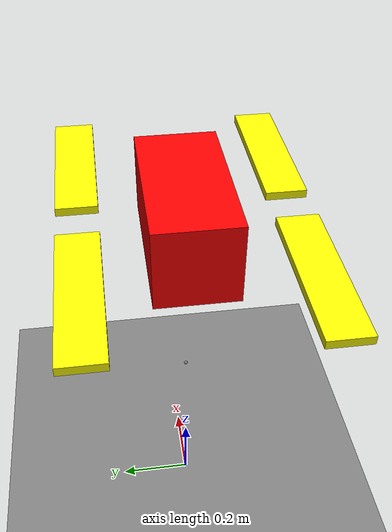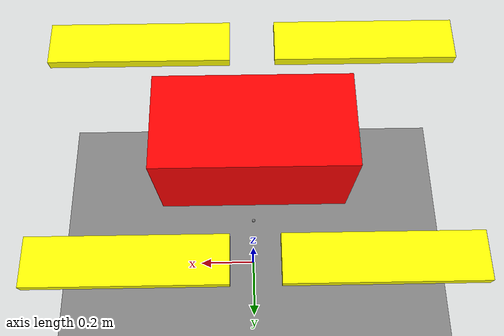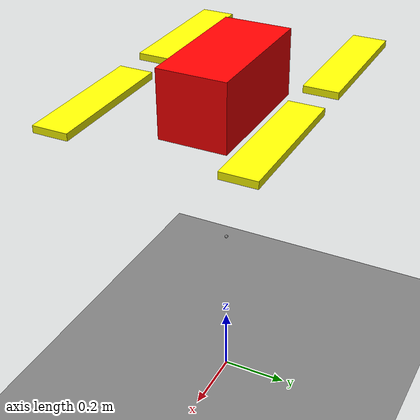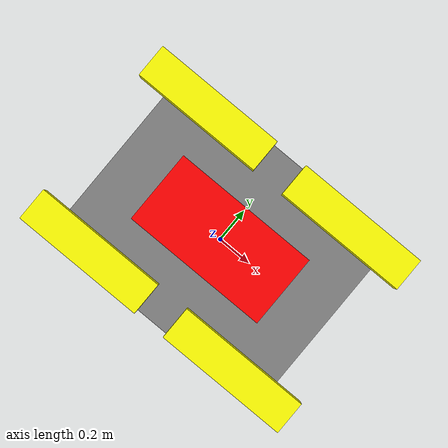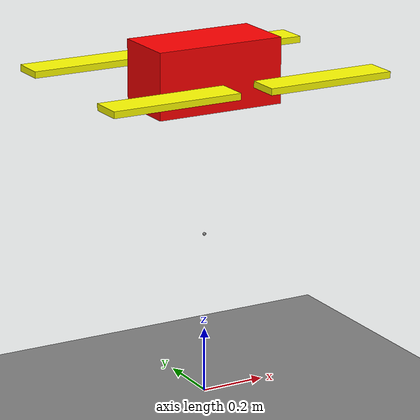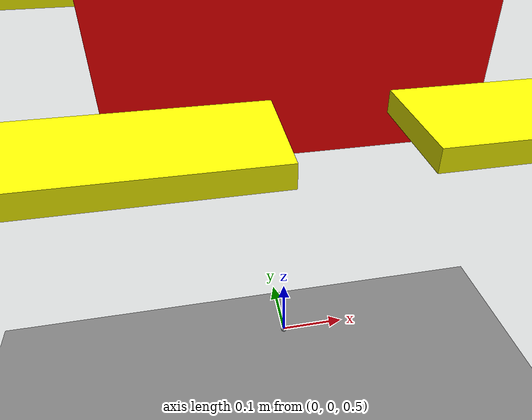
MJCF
<mujoco model="simulation">
    <option gravity="0 0 -9.81" timestep="0.001" integrator="RK4"/>
    <visual>
        <headlight ambient="0.7 0.7 0.7"/>
    </visual>
    <asset>
        <texture name="checker" type="2d" builtin="checker" width="512" height="512" rgb1="0.7 0.7 0.7" rgb2="0.3 0.3 0.3"/>
        <material name="grid" texture="checker" texrepeat="1 1" texuniform="true"/>
    </asset>
    <worldbody>
        <geom type="plane" size="1000 1000 1" material="grid"/>
        <body name="usv" pos="0 0 1">
            <freejoint/>
            <geom type="box" size="0.2 0.1 0.1" mass="1" rgba="1 0 0 1"/>
            <site name="s_imu" pos="0 0 0"/>
            <site name="s_rangefinder" pos="0 0 -0.5" zaxis="0 0 -1"/>
            <body name="m1" pos="0.25 0.25 0">
                <joint name="j1" type="hinge" axis="0 0 1"/>
                <site name="s1" pos="0 0 0"/>
                <geom type="box" size="0.2 0.05 0.01" mass="0.01" rgba="1 1 0 1"/>
            </body>
            <body name="m2" pos="-0.25 0.25 0">
                <joint name="j2" type="hinge" axis="0 0 1"/>
                <site name="s2" pos="0 0 0"/>
                <geom type="box" size="0.2 0.05 0.01" mass="0.01" rgba="1 1 0 1"/>
            </body>
            <body name="m3" pos="-0.25 -0.25 0">
                <joint name="j3" type="hinge" axis="0 0 1"/>
                <site name="s3" pos="0 0 0"/>
                <geom type="box" size="0.2 0.05 0.01" mass="0.01" rgba="1 1 0 1"/>
            </body>
            <body name="m4" pos="0.25 -0.25 0">
                <joint name="j4" type="hinge" axis="0 0 1"/>
                <site name="s4" pos="0 0 0"/>
                <geom type="box" size="0.2 0.05 0.01" mass="0.01" rgba="1 1 0 1"/>
            </body>
        </body>
    </worldbody>
    <actuator>
        <motor name="motor1" joint="j1"/>
        <motor name="motor2" joint="j2"/>
        <motor name="motor3" joint="j3"/>
        <motor name="motor4" joint="j4"/>
        <general name="propeller1" site="s1" gear="0 0 +0.000003133 0 0 -0.00000003133"/>
        <general name="propeller2" site="s2" gear="0 0 -0.000003133 0 0 -0.00000003133"/>
        <general name="propeller3" site="s3" gear="0 0 +0.000003133 0 0 -0.00000003133"/>
        <general name="propeller4" site="s4" gear="0 0 -0.000003133 0 0 -0.00000003133"/>
    </actuator>
    <sensor>
        <jointvel name="omega1" joint="j1"/>
        <jointvel name="omega2" joint="j2"/>
        <jointvel name="omega3" joint="j3"/>
        <jointvel name="omega4" joint="j4"/>
        <gyro name="gyro" site="s_imu" interval="0.001 0"/>
        <accelerometer name="accel" site="s_imu" interval="0.001 0"/>
        <magnetometer name="mag" site="s_imu" interval="0.02 0"/>
        <rangefinder name="rangefinder" site="s_rangefinder" interval="0.1 0" data="dist"/>
    </sensor>
</mujoco>
